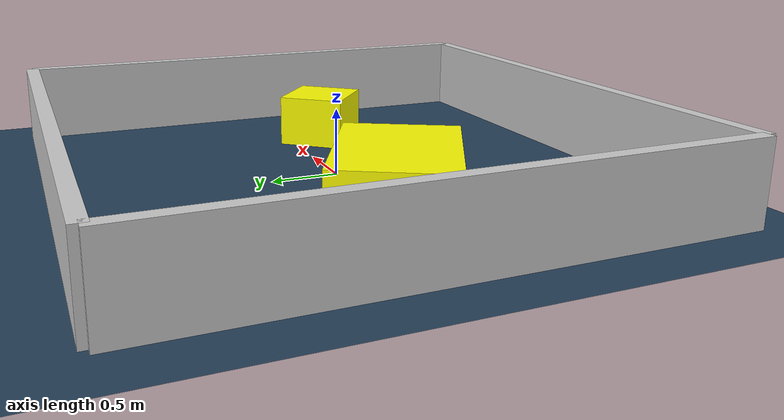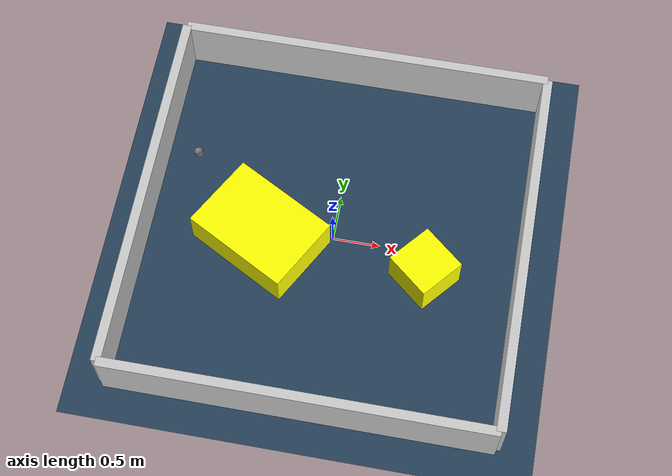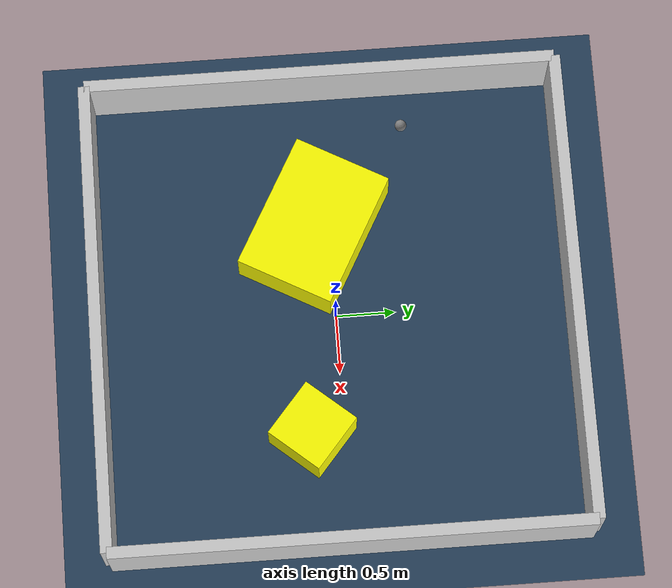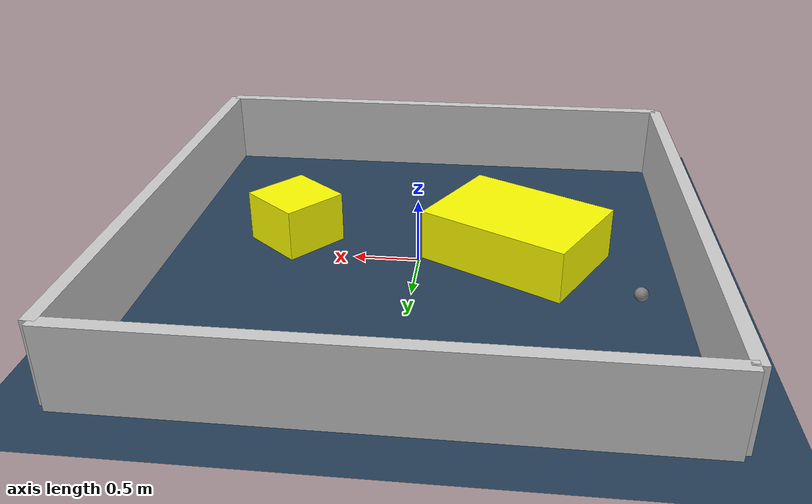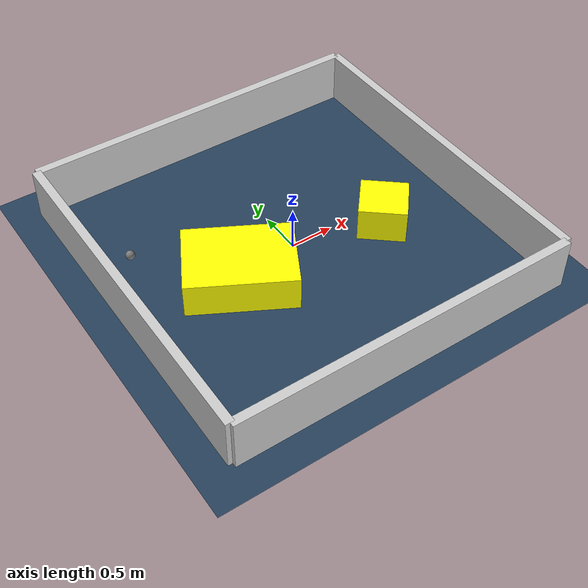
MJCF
<?xml version="1.0" ?>
<mujoco model="generated_environment">
  <option timestep="0.01" integrator="RK4" cone="elliptic"/>
  <default>
    <geom density="1"/>
  </default>
  <asset>
    <texture builtin="gradient" height="3072" rgb1="0.3 0.5 0.7" rgb2="0 0 0" type="skybox" width="512"/>
    <texture builtin="checker" height="300" mark="edge" markrgb="0.8 0.8 0.8" name="groundplane" rgb1="0.2 0.3 0.4" rgb2="0.1 0.2 0.3" type="2d" width="300"/>
    <material name="groundplane" reflectance="0.2" texrepeat="5 5" texture="groundplane" texuniform="true"/>
    <material name="robot" rgba="0.0 1.0 0.0 1"/>
  </asset>
  <worldbody>
    <light dir="0 0 -1" directional="true" pos="0 0 1.5"/>
    <geom condim="4" friction="1.0 0.005 0.001" material="groundplane" name="floor" size="0 0 0.05" type="plane"/>
    <body name="walls">
      <geom name="wall_1" condim="4" pos="-2.0 0.0 0.3" rgba="0.800000011920929 0.800000011920929 0.800000011920929 1.0" size="0.05 2.0 0.3" type="box"/>
      <geom name="wall_2" condim="4" pos="2.0 0.0 0.3" rgba="0.800000011920929 0.800000011920929 0.800000011920929 1.0" size="0.05 2.0 0.3" type="box"/>
      <geom name="wall_3" condim="4" pos="0.0 -2.0 0.3" rgba="0.800000011920929 0.800000011920929 0.800000011920929 1.0" size="2.0 0.05 0.3" type="box"/>
      <geom name="wall_4" condim="4" pos="0.0 2.0 0.3" rgba="0.800000011920929 0.800000011920929 0.800000011920929 1.0" size="2.0 0.05 0.3" type="box"/>
    </body>
    <body name="robot">
      <joint name="joint_x" type="slide" pos="0 0 0" axis="1 0 0"/>
      <joint name="joint_y" type="slide" pos="0 0 0" axis="0 1 0"/>
      <geom name="robot" type="sphere" pos="-1.6002455957424102 0.6709645962822757 0.2" size="0.05" mass="5." friction="1.0 0.005 0.0001" condim="4"/>
      <site name="sensor_ball"/>
    </body>
    <body name="obstacle_1_movable">
      <geom name="obstacle_1_movable" condim="4" pos="1.0173052222501577 -0.266230341676851 0.2" euler="0 0 139.86755032046295" friction="1.0 0.005 0.001" rgba="1 1 0 1" size="0.2660809127403399 0.26069968910276975 0.2" type="box" mass="0.1"/>
      <joint type="free"/>
    </body>
    <body name="obstacle_2_movable">
      <geom name="obstacle_2_movable" condim="4" pos="-0.7499545051668297 -0.13517779477952674 0.2" euler="0 0 151.4126221896908" friction="1.0 0.005 0.001" rgba="1 1 0 1" size="0.5953980246046706 0.4278730626102273 0.2" type="box" mass="0.1"/>
      <joint type="free"/>
    </body>
  </worldbody>
  <actuator>
    <motor name="actuator_x" joint="joint_x" gear="1" ctrlrange="-1 1"/>
    <motor name="actuator_y" joint="joint_y" gear="1" ctrlrange="-1 1"/>
  </actuator>
</mujoco>
